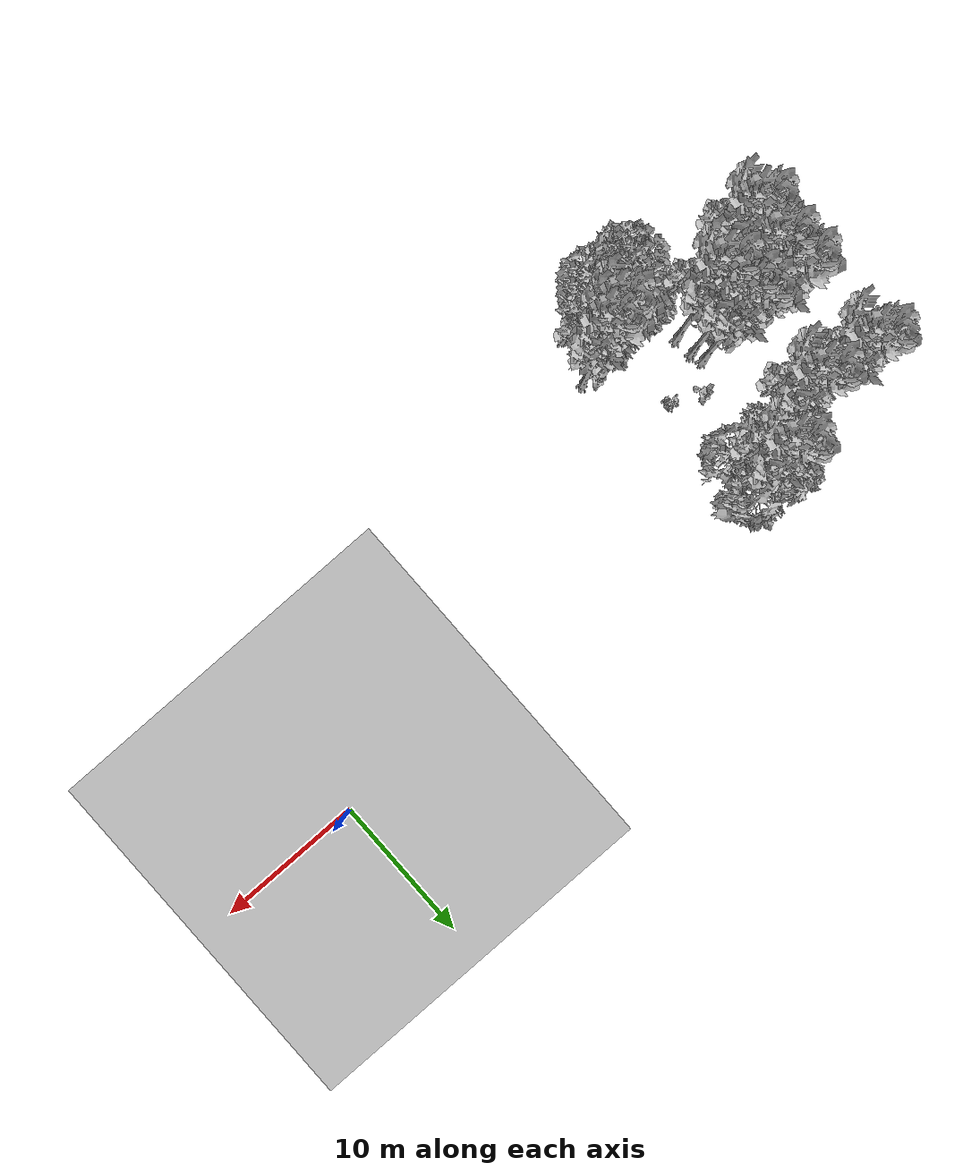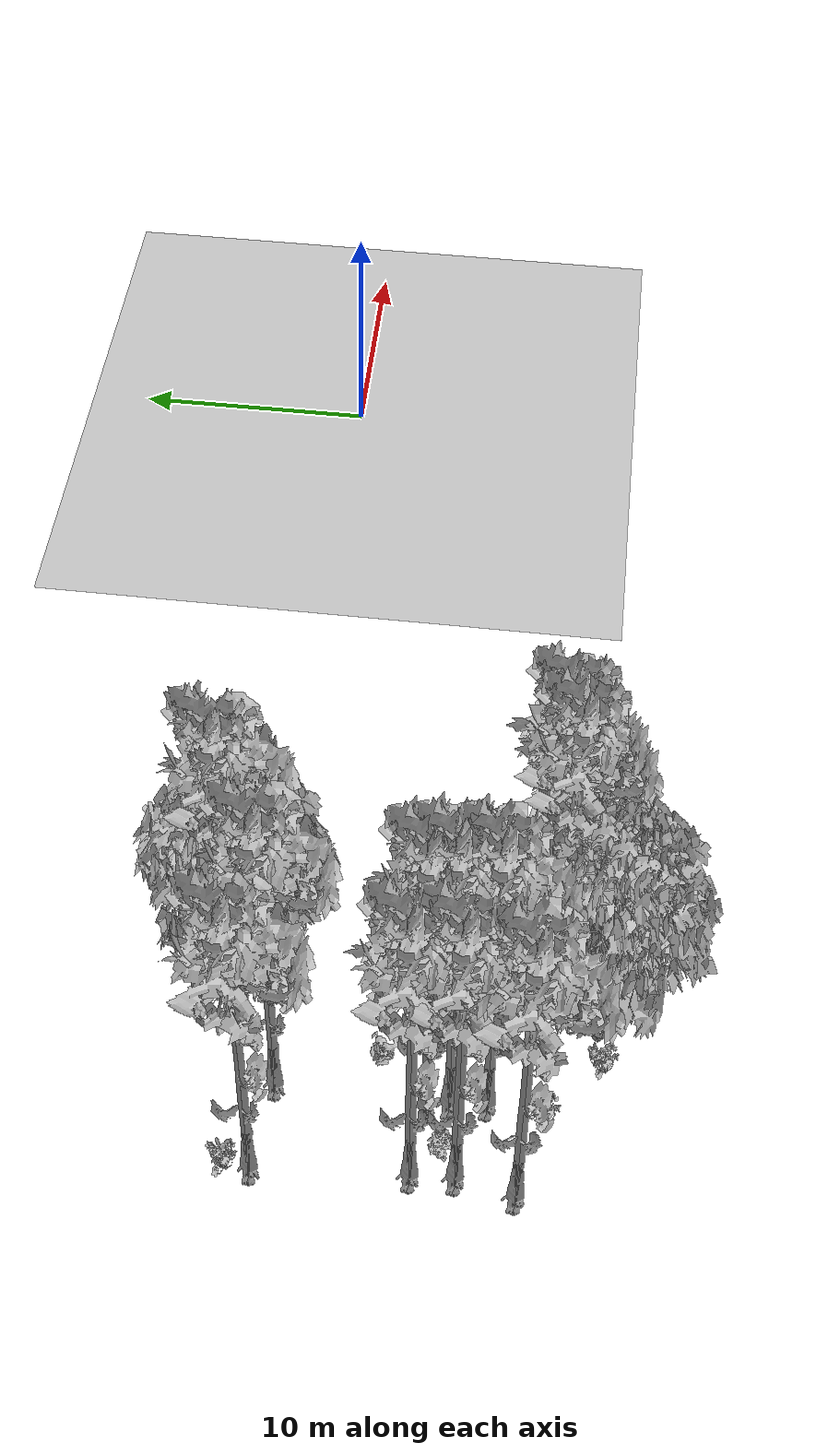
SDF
<sdf version="1.7">
 <world name="default">
  <model name="ground_plane">
   <static>1</static>
   <link name="link">
    <collision name="collision">
     <pose>-50 0 0 0 -0 0</pose>
     <geometry><plane><normal>0 0 1</normal><size>80 80</size></plane></geometry>
     <surface><contact><ode><min_depth>0.01</min_depth><max_vel>0</max_vel></ode></contact></surface>
    </collision>
    <visual name="grass">
     <cast_shadows>0</cast_shadows>
     <geometry>
      <mesh>
       <scale>0.46714285714285714 0.46714285714285714 0.1</scale>
       <uri>file://grass_plane/meshes/grass_plane.dae</uri>
      </mesh>
     </geometry>
    </visual>
   </link>
  </model>
  <model name="Tree 94">
   <static>1</static>
   <pose>-35.510804516733614 -6.703987103843872 0 1.57079 -0 0</pose>
   <link name="link">
    <collision name="collision">
     <geometry><mesh><scale>3.5 5 3.5</scale><uri>model://tree_9/meshes/tree_9.obj</uri></mesh></geometry>
    </collision>
    <visual name="visual">
     <geometry><mesh><scale>3.5 5 3.5</scale><uri>model://tree_9/meshes/tree_9.obj</uri></mesh></geometry>
    </visual>
   </link>
  </model>
  <model name="Tree 134">
   <static>1</static>
   <pose>-38.610611207612834 -0.9489939933530849 0 1.57079 -0 0</pose>
   <link name="link">
    <collision name="collision">
     <geometry><mesh><scale>3.5 5 3.5</scale><uri>model://tree_9/meshes/tree_9.obj</uri></mesh></geometry>
    </collision>
    <visual name="visual">
     <geometry><mesh><scale>3.5 5 3.5</scale><uri>model://tree_9/meshes/tree_9.obj</uri></mesh></geometry>
    </visual>
   </link>
  </model>
  <model name="Tree 156">
   <static>1</static>
   <pose>-38.23664648847783 -6.41620003411014 0 1.57079 -0 0</pose>
   <link name="link">
    <collision name="collision">
     <geometry><mesh><scale>3.5 5 3.5</scale><uri>model://tree_9/meshes/tree_9.obj</uri></mesh></geometry>
    </collision>
    <visual name="visual">
     <geometry><mesh><scale>3.5 5 3.5</scale><uri>model://tree_9/meshes/tree_9.obj</uri></mesh></geometry>
    </visual>
   </link>
  </model>
  <model name="Tree 271">
   <static>1</static>
   <pose>-38.14162851683074 -7.970931968100544 0 1.57079 -0 0</pose>
   <link name="link">
    <collision name="collision">
     <geometry><mesh><scale>3.5 5 3.5</scale><uri>model://tree_9/meshes/tree_9.obj</uri></mesh></geometry>
    </collision>
    <visual name="visual">
     <geometry><mesh><scale>3.5 5 3.5</scale><uri>model://tree_9/meshes/tree_9.obj</uri></mesh></geometry>
    </visual>
   </link>
  </model>
  <model name="Tree 350">
   <static>1</static>
   <pose>-31.632575518959666 0.45465238838980326 0 1.57079 -0 0</pose>
   <link name="link">
    <collision name="collision">
     <geometry><mesh><scale>3.5 5 3.5</scale><uri>model://tree_2/meshes/tree_2.obj</uri></mesh></geometry>
    </collision>
    <visual name="visual">
     <geometry><mesh><scale>3.5 5 3.5</scale><uri>model://tree_2/meshes/tree_2.obj</uri></mesh></geometry>
    </visual>
   </link>
  </model>
  <model name="Tree 371">
   <static>1</static>
   <pose>-32.075917350885234 -12.56624934841038 0 1.57079 -0 0</pose>
   <link name="link">
    <collision name="collision">
     <geometry><mesh><scale>3.5 5 3.5</scale><uri>model://tree_2/meshes/tree_2.obj</uri></mesh></geometry>
    </collision>
    <visual name="visual">
     <geometry><mesh><scale>3.5 5 3.5</scale><uri>model://tree_2/meshes/tree_2.obj</uri></mesh></geometry>
    </visual>
   </link>
  </model>
  <model name="Tree 380">
   <static>1</static>
   <pose>-31.52626055901459 -11.927708983520446 0 1.57079 -0 0</pose>
   <link name="link">
    <collision name="collision">
     <geometry><mesh><scale>3.5 5 3.5</scale><uri>model://tree_2/meshes/tree_2.obj</uri></mesh></geometry>
    </collision>
    <visual name="visual">
     <geometry><mesh><scale>3.5 5 3.5</scale><uri>model://tree_2/meshes/tree_2.obj</uri></mesh></geometry>
    </visual>
   </link>
  </model>
  <model name="Tree 394">
   <static>1</static>
   <pose>-35.282569059536975 -7.4982971154487075 0 1.57079 -0 0</pose>
   <link name="link">
    <collision name="collision">
     <geometry><mesh><scale>3.5 5 3.5</scale><uri>model://tree_9/meshes/tree_9.obj</uri></mesh></geometry>
    </collision>
    <visual name="visual">
     <geometry><mesh><scale>3.5 5 3.5</scale><uri>model://tree_9/meshes/tree_9.obj</uri></mesh></geometry>
    </visual>
   </link>
  </model>
  <model name="Tree 418">
   <static>1</static>
   <pose>-28.80074536011146 -10.554389630529812 0 1.57079 -0 0</pose>
   <link name="link">
    <collision name="collision">
     <geometry><mesh><scale>3.5 5 3.5</scale><uri>model://tree_9/meshes/tree_9.obj</uri></mesh></geometry>
    </collision>
    <visual name="visual">
     <geometry><mesh><scale>3.5 5 3.5</scale><uri>model://tree_9/meshes/tree_9.obj</uri></mesh></geometry>
    </visual>
   </link>
  </model>
  <model name="Tree 494">
   <static>1</static>
   <pose>-29.778943299181066 -10.905474855110853 0 1.57079 -0 0</pose>
   <link name="link">
    <collision name="collision">
     <geometry><mesh><scale>3.5 5 3.5</scale><uri>model://tree_9/meshes/tree_9.obj</uri></mesh></geometry>
    </collision>
    <visual name="visual">
     <geometry><mesh><scale>3.5 5 3.5</scale><uri>model://tree_9/meshes/tree_9.obj</uri></mesh></geometry>
    </visual>
   </link>
  </model>
  <model name="Tree 508">
   <static>1</static>
   <pose>-35.16242238247277 -8.818171964912807 0 1.57079 -0 0</pose>
   <link name="link">
    <collision name="collision">
     <geometry><mesh><scale>3.5 5 3.5</scale><uri>model://tree_9/meshes/tree_9.obj</uri></mesh></geometry>
    </collision>
    <visual name="visual">
     <geometry><mesh><scale>3.5 5 3.5</scale><uri>model://tree_9/meshes/tree_9.obj</uri></mesh></geometry>
    </visual>
   </link>
  </model>
  <model name="Tree 535">
   <static>1</static>
   <pose>-31.83931794739295 0.4639793170747524 0 1.57079 -0 0</pose>
   <link name="link">
    <collision name="collision">
     <geometry><mesh><scale>3.5 5 3.5</scale><uri>model://tree_9/meshes/tree_9.obj</uri></mesh></geometry>
    </collision>
    <visual name="visual">
     <geometry><mesh><scale>3.5 5 3.5</scale><uri>model://tree_9/meshes/tree_9.obj</uri></mesh></geometry>
    </visual>
   </link>
  </model>
  <model name="Tree 598">
   <static>1</static>
   <pose>-38.57710409299219 -10.06251585989796 0 1.57079 -0 0</pose>
   <link name="link">
    <collision name="collision">
     <geometry><mesh><scale>3.5 5 3.5</scale><uri>model://tree_9/meshes/tree_9.obj</uri></mesh></geometry>
    </collision>
    <visual name="visual">
     <geometry><mesh><scale>3.5 5 3.5</scale><uri>model://tree_9/meshes/tree_9.obj</uri></mesh></geometry>
    </visual>
   </link>
  </model>
  <model name="Tree 600">
   <static>1</static>
   <pose>-35.283218393685246 -1.33392483794416 0 1.57079 -0 0</pose>
   <link name="link">
    <collision name="collision">
     <geometry><mesh><scale>3.5 5 3.5</scale><uri>model://tree_9/meshes/tree_9.obj</uri></mesh></geometry>
    </collision>
    <visual name="visual">
     <geometry><mesh><scale>3.5 5 3.5</scale><uri>model://tree_9/meshes/tree_9.obj</uri></mesh></geometry>
    </visual>
   </link>
  </model>
  <model name="Bush 2">
   <static>1</static>
   <pose>-32.240541914419886 -6.039249080974187 0 1.57079 -0 0</pose>
   <link name="link">
    <collision name="collision">
     <geometry><mesh><scale>2 2 2</scale><uri>model://bush_2/meshes/bush_2.obj</uri></mesh></geometry>
     <surface><contact><collide_without_contact>false</collide_without_contact></contact></surface>
    </collision>
    <visual name="visual">
     <geometry><mesh><scale>2 2 2</scale><uri>model://bush_2/meshes/bush_2.obj</uri></mesh></geometry>
    </visual>
   </link>
  </model>
  <model name="Bush 196">
   <static>1</static>
   <pose>-33.31209389747241 -12.76947307207438 0 1.57079 -0 0</pose>
   <link name="link">
    <collision name="collision">
     <geometry><mesh><scale>2 2 2</scale><uri>model://bush_4/meshes/bush_4.obj</uri></mesh></geometry>
     <surface><contact><collide_without_contact>false</collide_without_contact></contact></surface>
    </collision>
    <visual name="visual">
     <geometry><mesh><scale>2 2 2</scale><uri>model://bush_4/meshes/bush_4.obj</uri></mesh></geometry>
    </visual>
   </link>
  </model>
  <model name="Bush 226">
   <static>1</static>
   <pose>-36.94052809567532 -7.4387946840546135 0 1.57079 -0 0</pose>
   <link name="link">
    <collision name="collision">
     <geometry><mesh><scale>2 2 2</scale><uri>model://bush_2/meshes/bush_2.obj</uri></mesh></geometry>
     <surface><contact><collide_without_contact>false</collide_without_contact></contact></surface>
    </collision>
    <visual name="visual">
     <geometry><mesh><scale>2 2 2</scale><uri>model://bush_2/meshes/bush_2.obj</uri></mesh></geometry>
    </visual>
   </link>
  </model>
  <model name="Bush 248">
   <static>1</static>
   <pose>-30.59330470513877 -13.226430087960868 0 1.57079 -0 0</pose>
   <link name="link">
    <collision name="collision">
     <geometry><mesh><scale>2 2 2</scale><uri>model://bush_2/meshes/bush_2.obj</uri></mesh></geometry>
     <surface><contact><collide_without_contact>false</collide_without_contact></contact></surface>
    </collision>
    <visual name="visual">
     <geometry><mesh><scale>2 2 2</scale><uri>model://bush_2/meshes/bush_2.obj</uri></mesh></geometry>
    </visual>
   </link>
  </model>
  <model name="Bush 373">
   <static>1</static>
   <pose>-35.5626869612239 -10.847939801263024 0 1.57079 -0 0</pose>
   <link name="link">
    <collision name="collision">
     <geometry><mesh><scale>2 2 2</scale><uri>model://bush_4/meshes/bush_4.obj</uri></mesh></geometry>
     <surface><contact><collide_without_contact>false</collide_without_contact></contact></surface>
    </collision>
    <visual name="visual">
     <geometry><mesh><scale>2 2 2</scale><uri>model://bush_4/meshes/bush_4.obj</uri></mesh></geometry>
    </visual>
   </link>
  </model>
  <model name="Bush 456">
   <static>1</static>
   <pose>-33.85891271549395 -5.023186013905985 0 1.57079 -0 0</pose>
   <link name="link">
    <collision name="collision">
     <geometry><mesh><scale>2 2 2</scale><uri>model://bush_0/meshes/bush_0.obj</uri></mesh></geometry>
     <surface><contact><collide_without_contact>false</collide_without_contact></contact></surface>
    </collision>
    <visual name="visual">
     <geometry><mesh><scale>2 2 2</scale><uri>model://bush_0/meshes/bush_0.obj</uri></mesh></geometry>
    </visual>
   </link>
  </model>
  <model name="Bush 491">
   <static>1</static>
   <pose>-38.658360499259 -0.0757794837003587 0 1.57079 -0 0</pose>
   <link name="link">
    <collision name="collision">
     <geometry><mesh><scale>2 2 2</scale><uri>model://bush_4/meshes/bush_4.obj</uri></mesh></geometry>
     <surface><contact><collide_without_contact>false</collide_without_contact></contact></surface>
    </collision>
    <visual name="visual">
     <geometry><mesh><scale>2 2 2</scale><uri>model://bush_4/meshes/bush_4.obj</uri></mesh></geometry>
    </visual>
   </link>
  </model>
  <model name="Bush 618">
   <static>1</static>
   <pose>-31.325710754806913 -12.402335044636725 0 1.57079 -0 0</pose>
   <link name="link">
    <collision name="collision">
     <geometry><mesh><scale>2 2 2</scale><uri>model://bush_5/meshes/bush_5.obj</uri></mesh></geometry>
     <surface><contact><collide_without_contact>false</collide_without_contact></contact></surface>
    </collision>
    <visual name="visual">
     <geometry><mesh><scale>2 2 2</scale><uri>model://bush_5/meshes/bush_5.obj</uri></mesh></geometry>
    </visual>
   </link>
  </model>
  <model name="Bush 638">
   <static>1</static>
   <pose>-29.39935879533301 -10.093021361752392 0 1.57079 -0 0</pose>
   <link name="link">
    <collision name="collision">
     <geometry><mesh><scale>2 2 2</scale><uri>model://bush_0/meshes/bush_0.obj</uri></mesh></geometry>
     <surface><contact><collide_without_contact>false</collide_without_contact></contact></surface>
    </collision>
    <visual name="visual">
     <geometry><mesh><scale>2 2 2</scale><uri>model://bush_0/meshes/bush_0.obj</uri></mesh></geometry>
    </visual>
   </link>
  </model>
 </world>
</sdf>
